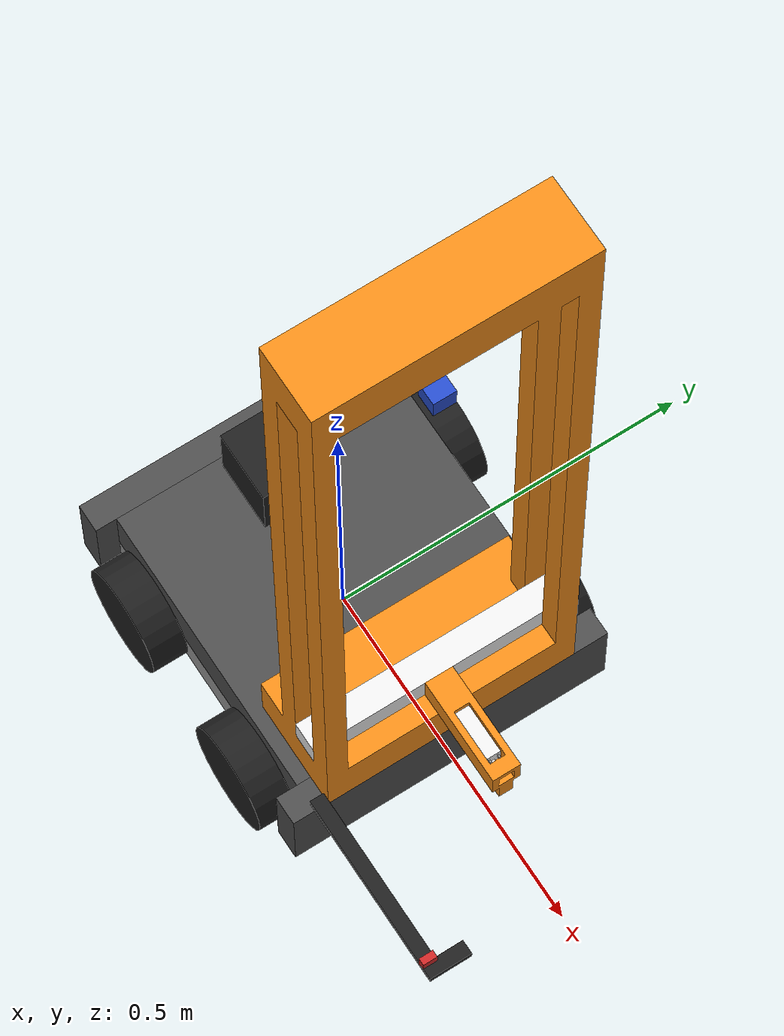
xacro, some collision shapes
<?xml version="1.0"?>

<robot name="jazzy" xmlns:xacro="https://www.ros.org/wiki/xacro" >
    <!--mobile base-->
    <xacro:include filename="$(find ids_description)/urdf/wheeler_2.urdf.xacro" />
      <xacro:property name="friction_k" value="0.98"/>
      <xacro:property name="friction_s" value="0.98"/>
    <xacro:fourwheeler_base_macro/>

    <!--frame 3DOF-->
    <xacro:include filename="$(find ids_description)/urdf/frame.urdf.xacro" />
    <xacro:frame_macro parent="link_fbumper" name="mrobot">
      <origin xyz="-0.11 0 0.14" rpy="0 0 0"/>
    </xacro:frame_macro>

    <!--RGB-D camera, look forward-->
    <xacro:include filename="$(find ids_description)/urdf/realsense.urdf.xacro" />
    <xacro:realsense_macro parent="link_hslider">
      <xacro:property name="location_x" value="0.06"/>
      <xacro:property name="location_y" value="0.0"/>
      <xacro:property name="location_z" value="0.0725"/>
      <xacro:property name="camera_width" value="640" />
      <xacro:property name="camera_height" value="480" />
      <xacro:property name="camera_name" value="camera" />
    </xacro:realsense_macro>

    <!--camera, look upward-->
    <xacro:include filename="$(find ids_description)/urdf/camera.urdf.xacro"/>
    <xacro:camera_macro parent="link_tip">
      <xacro:property name="location_x" value="0.02" />
      <xacro:property name="location_y" value="0.0" />
      <xacro:property name="location_z" value="0.015" />
      <xacro:property name="location_r" value="0" />
      <xacro:property name="location_p" value="-1.57" />
      <xacro:property name="location_y" value="0" />
      <xacro:property name="camera_width" value="600" />
      <xacro:property name="camera_height" value="600" />
      <xacro:property name="camera_name" value="arducam"/>
    </xacro:camera_macro>

    <!-- laser -->
    <xacro:include filename="$(find ids_description)/urdf/laser.urdf.xacro"/>
    <xacro:laser_macro parent="link_fbumper">
      <xacro:property name="location_x" value="0.05" />
      <xacro:property name="location_y" value="0" />
      <xacro:property name="location_z" value="0" />
    </xacro:laser_macro>

</robot>

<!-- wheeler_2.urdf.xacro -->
<robot xmlns:xacro="https://www.ros.org/wiki/xacro" >
    <xacro:property name="friction_k" value="0.98"/>
    <xacro:property name="friction_s" value="0.98"/>
    <xacro:property name="PI" value="3.1415926535897931"/>
    <xacro:property name="chassis_x" value="0.42" />
    <xacro:property name="chassis_y" value="0.4" />
    <xacro:property name="chassis_z" value="0.05" />
    <xacro:property name="chassis_m" value="40" />

    <xacro:property name="wheel_r" value="0.075"/>
    <xacro:property name="wheel_l" value="0.05"/>
    <xacro:property name="wheel_m" value="0.5"/>

    <xacro:property name="wheelbase" value="0.25" /> <!--base on the wheel diameter and chassis_x-->
    <xacro:property name="track" value="0.45" /> <!--base on the wheel width and chassis_y-->
    <xacro:property name="base_x" value="0.42" />
    <xacro:property name="base_y" value="0.4" />
    <xacro:property name="base_z" value="0.075" />
    <xacro:property name="base_m" value="20" />

    <xacro:property name="bumper_x" value="0.04" />
    <xacro:property name="bumper_y" value="0.46" />
    <xacro:property name="bumper_z" value="0.125" />
    <xacro:property name="bumper_m" value="1" />
    <xacro:property name="battery_m" value="10" />

    <!-- main triwheeler link -->
    <xacro:macro name="fourwheeler_base_macro">
      <link name="link_chassis">
        <visual>
          <origin xyz="0 0 0" rpy="0 0 0" />
          <geometry>
            <box size="${chassis_x} ${chassis_y} ${chassis_z}"/>
          </geometry>
        </visual>
        <collision>
          <origin xyz="0 0 0" rpy="0 0 0" />
          <geometry>
            <box size="${chassis_x} ${chassis_y} ${chassis_z}"/>
          </geometry>
        </collision>
        <inertial>
          <mass value="${chassis_m}"/>
          <origin rpy="0 0 0" xyz="0 0 0"/>
          <inertia ixx="${(1/12)*chassis_m*(chassis_y*chassis_y+chassis_z*chassis_z)}" ixy="0" ixz="0" iyy="${(1/12)*chassis_m*(chassis_z*chassis_z+chassis_x*chassis_x)}" iyz="0" izz="${(1/12)*chassis_m*(chassis_x*chassis_x+chassis_y*chassis_y)}"/>
        </inertial>
      </link>

      <!--left rear wheel-->
      <joint name="joint_chassis_lrwheel" type="continuous">
        <origin xyz="-${wheelbase/2} ${track/2} 0" rpy="0 0 0" />
        <parent link="link_chassis"/>
        <child link="link_lrwheel"/>
        <axis xyz="0 1 0" rpy="0 0 0" />
      </joint>
      <link name="link_lrwheel">
        <visual>
          <origin rpy="${PI/2} 0 0" xyz="0 0 0"/>
          <geometry>
            <cylinder length="${wheel_l}" radius="${wheel_r}"/>
          </geometry>
        </visual>
        <collision>
          <origin rpy="${PI/2} 0 0" xyz="0 0 0" />
          <geometry>
            <cylinder length="${wheel_l}" radius="${wheel_r}"/>
          </geometry>
        </collision>
        <inertial>
          <mass value="${wheel_m}"/>
          <origin rpy="${PI/2} 0 0" xyz="0 0 0"/>
          <inertia ixx="${(1/12)*wheel_m*(3*wheel_r*wheel_r+wheel_l*wheel_l)}" ixy="0" ixz="0" iyy="${(1/12)*wheel_m*(3*wheel_r*wheel_r+wheel_l*wheel_l)}" iyz="0" izz="${(1/2)*wheel_m*wheel_r*wheel_r}"/>
        </inertial>
      </link>

      <!--right rear wheel-->
      <joint name="joint_chassis_rrwheel" type="continuous">
        <origin xyz="-${wheelbase/2} -${track/2} 0" rpy="0 0 0" />
        <parent link="link_chassis"/>
        <child link="link_rrwheel"/>
        <axis xyz="0 1 0" rpy="0 0 0" />
      </joint>
      <link name="link_rrwheel">
        <visual>
          <origin rpy="${PI/2} 0 0" xyz="0 0 0"/>
          <geometry>
            <cylinder length="${wheel_l}" radius="${wheel_r}"/>
          </geometry>
        </visual>
        <collision>
          <origin rpy="${PI/2} 0 0" xyz="0 0 0" />
          <geometry>
            <cylinder length="${wheel_l}" radius="${wheel_r}"/>
          </geometry>
        </collision>
        <inertial>
          <mass value="${wheel_m}"/>
          <origin rpy="${PI/2} 0 0" xyz="0 0 0"/>
          <inertia ixx="${(1/12)*wheel_m*(3*wheel_r*wheel_r+wheel_l*wheel_l)}" ixy="0" ixz="0" iyy="${(1/12)*wheel_m*(3*wheel_r*wheel_r+wheel_l*wheel_l)}" iyz="0" izz="${(1/2)*wheel_m*wheel_r*wheel_r}"/>
        </inertial>
      </link>

      <!--left front wheel-->
      <joint name="joint_chassis_lfwheel" type="continuous">
        <origin xyz="${wheelbase/2} ${track/2} 0" rpy="0 0 0" />
        <parent link="link_chassis"/>
        <child link="link_lfwheel"/>
        <axis xyz="0 1 0" rpy="0 0 0" />
      </joint>
      <link name="link_lfwheel">
        <visual>
          <origin rpy="${PI/2} 0 0" xyz="0 0 0"/>
          <geometry>
            <cylinder length="${wheel_l}" radius="${wheel_r}"/>
          </geometry>
        </visual>
        <collision>
          <origin rpy="${PI/2} 0 0" xyz="0 0 0" />
          <geometry>
            <cylinder length="${wheel_l}" radius="${wheel_r}"/>
          </geometry>
        </collision>
        <inertial>
          <mass value="${wheel_m}"/>
          <origin rpy="${PI/2} 0 0" xyz="0 0 0"/>
          <inertia ixx="${(1/12)*wheel_m*(3*wheel_r*wheel_r+wheel_l*wheel_l)}" ixy="0" ixz="0" iyy="${(1/12)*wheel_m*(3*wheel_r*wheel_r+wheel_l*wheel_l)}" iyz="0" izz="${(1/2)*wheel_m*wheel_r*wheel_r}"/>
        </inertial>
      </link>

      <!--right front wheel-->
      <joint name="joint_chassis_rfwheel" type="continuous">
        <origin xyz="${wheelbase/2} -${track/2} 0" rpy="0 0 0" />
        <parent link="link_chassis"/>
        <child link="link_rfwheel"/>
        <axis xyz="0 1 0" rpy="0 0 0" />
      </joint>
      <link name="link_rfwheel">
        <visual>
          <origin rpy="${PI/2} 0 0" xyz="0 0 0"/>
          <geometry>
            <cylinder length="${wheel_l}" radius="${wheel_r}"/>
          </geometry>
        </visual>
        <collision>
          <origin rpy="${PI/2} 0 0" xyz="0 0 0" />
          <geometry>
            <cylinder length="${wheel_l}" radius="${wheel_r}"/>
          </geometry>
        </collision>
        <inertial>
          <mass value="${wheel_m}"/>
          <origin rpy="${PI/2} 0 0" xyz="0 0 0"/>
          <inertia ixx="${(1/12)*wheel_m*(3*wheel_r*wheel_r+wheel_l*wheel_l)}" ixy="0" ixz="0" iyy="${(1/12)*wheel_m*(3*wheel_r*wheel_r+wheel_l*wheel_l)}" iyz="0" izz="${(1/2)*wheel_m*wheel_r*wheel_r}"/>
        </inertial>
      </link>

      <!--upper base-->
      <joint name="joint_chassis_base" type="fixed">
        <origin xyz="0 0 ${chassis_z/2}" rpy="0 0 0"/>
        <parent link="link_chassis"/>
        <child link="link_base"/>
      </joint>

      <link name="link_base">
        <visual>
          <origin xyz="0 0 ${base_z/2}" rpy="0 0 0" />
          <geometry>
            <box size="${base_x} ${base_y} ${base_z}"/>
          </geometry>
        </visual>
        <collision>
          <origin xyz="0 0 ${base_z/2}" rpy="0 0 0" />
          <geometry>
            <box size="${base_x} ${base_y} ${base_z}"/>
          </geometry>
        </collision>
        <inertial>
          <mass value="${base_m}"/>
          <origin rpy="0 0 0" xyz="0 0 0"/>
          <inertia ixx="${(1/12)*base_m*(base_y*base_y+base_z*base_z)}" ixy="0" ixz="0" iyy="${(1/12)*base_m*(base_z*base_z+base_x*base_x)}" iyz="0" izz="${(1/12)*base_m*(base_x*base_x+base_y*base_y)}"/>
        </inertial>
      </link>

      <!--bumper-->
      <joint name="joint_chassis_fbumper" type="fixed">
        <origin xyz="${chassis_x/2} 0 ${(chassis_z+base_z)/2-chassis_z/2}" rpy="0 0 0"/>
        <parent link="link_chassis"/>
        <child link="link_fbumper"/>
      </joint>

      <link name="link_fbumper">
        <visual>
          <origin xyz="${bumper_x/2} 0 0" rpy="0 0 0" />
          <geometry>
            <box size="${bumper_x} ${bumper_y} ${bumper_z}"/>
          </geometry>
        </visual>
        <collision>
          <origin xyz="${bumper_x/2} 0 0" rpy="0 0 0" />
          <geometry>
            <box size="${bumper_x} ${bumper_y} ${bumper_z}"/>
          </geometry>
        </collision>
        <inertial>
          <mass value="${bumper_m}"/>
          <origin rpy="0 0 0" xyz="0 0 0"/>
          <inertia ixx="${(1/12)*bumper_m*(bumper_y*bumper_y+bumper_z*bumper_z)}" ixy="0" ixz="0" iyy="${(1/12)*bumper_m*(bumper_z*bumper_z+bumper_x*bumper_x)}" iyz="0" izz="${(1/12)*bumper_m*(bumper_x*bumper_x+bumper_y*bumper_y)}"/>
        </inertial>
      </link>

      <joint name="joint_chassis_rbumper" type="fixed">
        <origin xyz="-${chassis_x/2} 0 ${(chassis_z+base_z)/2-chassis_z/2}" rpy="0 0 0"/>
        <parent link="link_chassis"/>
        <child link="link_rbumper"/>
      </joint>

      <link name="link_rbumper">
        <visual>
          <origin xyz="-${bumper_x/2} 0 0" rpy="0 0 0" />
          <geometry>
            <box size="${bumper_x} ${bumper_y} ${bumper_z}"/>
          </geometry>
        </visual>
        <collision>
          <origin xyz="-${bumper_x/2} 0 0" rpy="0 0 0" />
          <geometry>
            <box size="${bumper_x} ${bumper_y} ${bumper_z}"/>
          </geometry>
        </collision>
        <inertial>
          <mass value="${bumper_m}"/>
          <origin rpy="0 0 0" xyz="0 0 0"/>
          <inertia ixx="${(1/12)*bumper_m*(bumper_y*bumper_y+bumper_z*bumper_z)}" ixy="0" ixz="0" iyy="${(1/12)*bumper_m*(bumper_z*bumper_z+bumper_x*bumper_x)}" iyz="0" izz="${(1/12)*bumper_m*(bumper_x*bumper_x+bumper_y*bumper_y)}"/>
        </inertial>
      </link>

      <!--baterry-->
      <joint name="joint_base_battery" type="fixed">
        <origin xyz="0 0 ${base_z/2}" rpy="0 0 0"/>
        <parent link="link_base"/>
        <child link="link_battery"/>
      </joint>

      <link name="link_battery">
        <visual>
          <origin xyz="-0.15 0 0.08" rpy="0 0 0" />
          <geometry>
            <box size="0.1 0.1 0.1"/>
          </geometry>
        </visual>
        <collision>
          <origin xyz="-0.15 0 0.08" rpy="0 0 0" />
          <geometry>
            <box size="0.1 0.1 0.1"/>
          </geometry>
        </collision>
        <inertial>
          <mass value="${battery_m}"/>
          <origin rpy="0 0 0" xyz="0 0 0"/>
          <inertia ixx="${(1/12)*battery_m*0.02}" ixy="0" ixz="0" iyy="${(1/12)*battery_m*0.02}" iyz="0" izz="${(1/12)*battery_m*0.02}"/>
        </inertial>
      </link>

      <!--Gazebo-->
      <!-- skid steering controller -->
      <gazebo>
        <plugin name="skid_steer_drive_controller" filename="libgazebo_ros_skid_steer_drive.so">
          <updateRate>100.0</updateRate>
          <robotNamespace>/</robotNamespace>
          <leftFrontJoint>joint_chassis_lfwheel</leftFrontJoint>
          <rightFrontJoint>joint_chassis_rfwheel</rightFrontJoint>
          <leftRearJoint>joint_chassis_lrwheel</leftRearJoint>
          <rightRearJoint>joint_chassis_rrwheel</rightRearJoint>
          <wheelSeparation>${wheelbase}</wheelSeparation>
          <wheelDiameter>2*${wheel_r}</wheelDiameter>
          <torque>200</torque>
          <topicName>cmd_vel</topicName>
          <commandTopic>cmd_vel</commandTopic>
          <robotBaseFrame>link_chassis</robotBaseFrame>
          <odometryFrame>odom</odometryFrame>
          <publish_odom>true</publish_odom>
          <publish_odom_tf>false</publish_odom_tf>
          <odometryTopic>odom</odometryTopic>
          <broadcastTF>true</broadcastTF>
          <covariance_x>0.0001</covariance_x>
          <covariance_y>0.0000</covariance_y>
          <covariance_yaw>0.01</covariance_yaw>
        </plugin>
      </gazebo>

      <gazebo reference="link_chassis">
        <material>Gazebo/Grey</material>
      </gazebo>

      <gazebo reference="link_base">
        <material>Gazebo/DarkGrey</material>
      </gazebo>

      <gazebo reference="link_fbumper">
        <material>Gazebo/DarkGrey</material>
      </gazebo>

      <gazebo reference="link_rbumper">
        <material>Gazebo/DarkGrey</material>
      </gazebo>

      <gazebo reference="link_lrwheel">
        <mu1>${friction_k}</mu1>
        <mu2>${friction_s}</mu2>
        <material>Gazebo/Black</material>
      </gazebo>

      <gazebo reference="link_rrwheel">
        <mu1>${friction_k}</mu1>
        <mu2>${friction_s}</mu2>
        <material>Gazebo/Black</material>
      </gazebo>

      <gazebo reference="link_lfwheel">
        <mu1>${friction_k}</mu1>
        <mu2>${friction_s}</mu2>
        <material>Gazebo/Black</material>
      </gazebo>

      <gazebo reference="link_rfwheel">
        <mu1>${friction_k}</mu1>
        <mu2>${friction_s}</mu2>
        <material>Gazebo/Black</material>
      </gazebo>

    </xacro:macro>
</robot>

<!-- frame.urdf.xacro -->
<robot xmlns:xacro="https://www.ros.org/wiki/xacro" >
    <xacro:property name="PI" value="3.1415926535897931"/>
    <xacro:property name="frame_m" value="20"/>
    <xacro:property name="vslider_m" value="2"/>
    <xacro:property name="hslider_m" value="0.8"/>
    <xacro:property name="plug_m" value="0.2"/>
    <xacro:property name="hook_m" value="0.5"/>
    <xacro:property name="tip_m" value="0.2"/>

    <xacro:macro name="frame_macro" params="parent *origin">
      <joint name="joint_jazzy_frame" type="fixed">
        <xacro:insert_block name="origin"/>
        <parent link="${parent}"/>
        <child link="link_frame"/>
      </joint>
      <link name="link_frame">
        <visual>
          <origin rpy="0 0 0" xyz="0 0 0"/>
          <geometry>
            <mesh filename="package://ids_description/meshes/jazzy/frame.obj" scale="0.01 0.01 0.01"/>
          </geometry>
        </visual>
        <collision>
          <origin rpy=" 0 0 0" xyz="0 0 0"/>
          <geometry>
            <mesh filename="package://ids_description/meshes/jazzy/frame.obj" scale="0.01 0.01 0.01"/>
          </geometry>
        </collision>
        <inertial>
          <mass value="${frame_m}"/>
          <origin rpy="0 0 0" xyz="0 0 0"/>
          <inertia ixx="${frame_m*2.523e-3}" ixy="0" ixz="-${frame_m*5.1e-5}" iyy="${frame_m*2.346e-3}" iyz="0" izz="${frame_m*1.93e-4}"/>
        </inertial>
      </link>
      <!--vertivcal slider-->
      <joint name="joint_frame_vslider" type="prismatic">
        <origin xyz="0.1 0 0.02" rpy="0 0 0"/>
        <parent link="link_frame"/>
        <child link="link_vslider"/>
        <axis xyz="0 0 1"/>
        <limit upper="0.96" lower="0" effort="100.0" velocity="0.1"/>
        <dynamics damping="0" friction="5.0"/>
      </joint>
      <link name="link_vslider">
        <visual>
          <origin rpy="0 0 0" xyz="0 0 0"/>
          <geometry>
            <box size="0.04 0.36 0.04"/>
          </geometry>
        </visual>
        <collision>
          <origin rpy=" 0 0 0" xyz="0 0 0"/>
          <geometry>
            <box size="0.04 0.36 0.04"/>
          </geometry>
        </collision>
        <inertial>
          <mass value="${vslider_m}"/>
          <origin rpy="0 0 0" xyz="0 0 0"/>
          <inertia ixx="${(1/12)*vslider_m*(0.36*0.36+0.04*0.04)}" ixy="0" ixz="0" iyy="${(1/12)*vslider_m*(0.04*0.04+0.04*0.04)}" iyz="0" izz="${(1/12)*vslider_m*(0.04*0.04+0.36*0.36)}"/>
        </inertial>
      </link>
      <!--horizontal slider-->
      <joint name="joint_vslider_hslider" type="prismatic">
        <origin xyz="0 0 0" rpy="0 0 0"/>
        <parent link="link_vslider"/>
        <child link="link_hslider"/>
        <axis xyz="0 1 0"/>
        <limit upper="0.13" lower="-0.13" effort="100.0" velocity="0.1"/>
        <dynamics damping="0" friction="5.0"/>
      </joint>
      <link name="link_hslider">
        <visual>
          <origin rpy="1.57 0 0" xyz="0.02 0 0"/>
          <geometry>
            <mesh filename="package://ids_description/meshes/jazzy/hslider.obj" scale="0.01 0.01 0.01"/>
          </geometry>
        </visual>
        <collision>
          <origin rpy="1.57 0 0" xyz="0.02 0 0"/>
          <geometry>
            <mesh filename="package://ids_description/meshes/jazzy/hslider.obj" scale="0.01 0.01 0.01"/>
          </geometry>
        </collision>
        <inertial>
          <mass value="${hslider_m}"/>
          <origin rpy="1.57 0 0" xyz="0.095 0 0"/>
          <inertia ixx="${(1/12)*hslider_m*(0.04*0.04+0.04*0.04)}" ixy="0" ixz="0" iyy="${(1/12)*hslider_m*(0.15*0.15+0.04*0.04)}" iyz="0" izz="${(1/12)*hslider_m*(0.04*0.04+0.15*0.15)}"/>
        </inertial>
      </link>
      <!--plug-->
      <joint name="joint_hslider_plug" type="prismatic">
        <origin xyz="0 0 0" rpy="0 0 0"/>
        <parent link="link_hslider"/>
        <child link="link_plug"/>
        <axis xyz="1 0 0"/>
        <limit upper="0.1" lower="0" effort="100.0" velocity="0.1"/>
        <dynamics damping="0" friction="5.0"/>
      </joint>
      <link name="link_plug">
        <visual>
          <origin rpy="1.57 0 1.57" xyz="0.07 -0.011 0.011"/>
          <geometry>
            <mesh filename="package://ids_description/meshes/jazzy/plug.obj" scale="0.01 0.01 0.01"/>
          </geometry>
        </visual>
        <collision>
          <origin rpy="1.57 0 1.57" xyz="0.07 -0.011 0.011"/>
          <geometry>
            <mesh filename="package://ids_description/meshes/jazzy/plug.obj" scale="0.01 0.01 0.01"/>
          </geometry>
          <surface>
            <friction>
              <ode>
                <mu>0.01</mu>
                <mu2>0.01</mu2>
              </ode>
            </friction>
          </surface>
        </collision>
        <inertial>
          <mass value="${plug_m}"/>
          <origin rpy="0 0 0" xyz="0.015 0 0"/>
          <inertia ixx="${(1/12)*plug_m*(0.022*0.022+0.022*0.022)}" ixy="0" ixz="0" iyy="${(1/12)*plug_m*(0.022*0.022+0.07*0.07)}" iyz="0" izz="${(1/12)*plug_m*(0.07*0.07+0.022*0.022)}"/>
        </inertial>
      </link>

      <!--contact bumper-->
      <joint name="joint_contact_bp" type="revolute">
        <origin xyz="0.161 0 -0.00636" rpy="0 0 0"/>
        <parent link="link_plug"/>
        <child link="link_contact_bp"/>
        <axis xyz="1 0 0"/>
        <limit upper="0" lower="0" effort="0.0" velocity="0.0"/>
      </joint>
      <link name="link_contact_bp">
        <visual>
          <origin rpy="0 0 0" xyz="0 0 0"/>
          <geometry>
            <box size="0.001 0.001 0.001"/>
          </geometry>
        </visual>
        <collision name="bump_sensor_collision">
          <origin rpy="0 0 0" xyz="0 0 0"/>
          <geometry>
            <box size="0.001 0.001 0.001"/>
          </geometry>
        </collision>
        <inertial>
          <mass value="0.001"/>
          <origin rpy="0 0 0" xyz="0 0 0"/>
          <inertia ixx="0.000000001" ixy="0" ixz="0" iyy="0.000000001" iyz="0" izz="0.000000001"/>
        </inertial>
      </link>

      <!--hook for door opening-->
      <joint name="joint_frame_hook" type="revolute">
        <origin xyz="0.165 -0.19 -0.07" rpy="0 0 0"/>
        <parent link="link_frame"/>
        <child link="link_hook"/>
        <axis xyz="0 -1 0"/>
        <limit upper="1.57" lower="0" effort="300.0" velocity="0.1"/>
      </joint>
      <link name="link_hook">
        <visual>
          <origin rpy="0 0 0" xyz="0.1 0 0"/>
          <geometry>
            <box size="0.25 0.02 0.01"/>
          </geometry>
        </visual>
        <collision>
          <origin rpy="0 0 0" xyz="0.1 0 0"/>
          <geometry>
            <box size="0.25 0.02 0.01"/>
          </geometry>
          <surface>
            <friction>
              <ode>
                <mu>0.01</mu>
                <mu2>0.01</mu2>
              </ode>
            </friction>
          </surface>
        </collision>
        <inertial>
          <mass value="${hook_m}"/>
          <origin rpy="0 0 0" xyz="0.1 0 0"/>
          <inertia ixx="${(1/3)*hook_m*(0.01*0.01+0.02*0.02)}" ixy="0" ixz="0" iyy="${(1/3)*hook_m*(4*0.2*0.2+0.01*0.01)}" iyz="0" izz="${(1/3)*hook_m*(4*0.2*0.2+0.02*0.02)}"/>
        </inertial>
      </link>

      <joint name="joint_hook_tip" type="fixed">
        <origin xyz="0.225 0 0" rpy="0 0 0"/>
        <parent link="link_hook"/>
        <child link="link_tip"/>
      </joint>
      <link name="link_tip">
        <visual>
          <origin rpy="0 0 0" xyz="0.01 0.02 0"/>
          <geometry>
            <box size="0.02 0.06 0.01"/>
          </geometry>
        </visual>
        <collision>
          <origin rpy="0 0 0" xyz="0.01 0.02 0"/>
          <geometry>
            <box size="0.02 0.06 0.01"/>
          </geometry>
        </collision>
        <inertial>
          <mass value="${tip_m}"/>
          <origin rpy="0 0 0" xyz="0.01 0.02 0"/>
          <inertia ixx="${(1/12)*tip_m*(0.06*0.06+0.01*0.01)}" ixy="0" ixz="0" iyy="${(1/3)*tip_m*(0.02*0.02+0.01*0.01)}" iyz="0" izz="${(1/12)*tip_m*(0.02*0.02+0.06*0.06)}"/>
        </inertial>
      </link>

      <!--transmission controls-->
      <transmission name="vtrans">
        <type>transmission_interface/SimpleTransmission</type>
        <joint name="joint_frame_vslider">
          <hardwareInterface>hardware_interface/EffortJointInterface</hardwareInterface>
        </joint>
        <actuator name="vmotor">
          <hardwareInterface>hardware_interface/EffortJointInterface</hardwareInterface>
          <mechanicalReduction>1</mechanicalReduction>
        </actuator>
      </transmission>
      <transmission name="htrans">
        <type>transmission_interface/SimpleTransmission</type>
        <joint name="joint_vslider_hslider">
          <hardwareInterface>hardware_interface/EffortJointInterface</hardwareInterface>
        </joint>
        <actuator name="hmotor">
          <hardwareInterface>hardware_interface/EffortJointInterface</hardwareInterface>
          <mechanicalReduction>1</mechanicalReduction>
        </actuator>
      </transmission>
      <transmission name="ftrans">
        <type>transmission_interface/SimpleTransmission</type>
        <joint name="joint_hslider_plug">
          <hardwareInterface>hardware_interface/EffortJointInterface</hardwareInterface>
        </joint>
        <actuator name="fmotor">
          <hardwareInterface>hardware_interface/EffortJointInterface</hardwareInterface>
          <mechanicalReduction>1</mechanicalReduction>
        </actuator>
      </transmission>
      <transmission name="strans">
        <type>transmission_interface/SimpleTransmission</type>
        <joint name="joint_frame_hook">
          <hardwareInterface>hardware_interface/EffortJointInterface</hardwareInterface>
        </joint>
        <actuator name="smotor">
          <hardwareInterface>hardware_interface/EffortJointInterface</hardwareInterface>
          <mechanicalReduction>1</mechanicalReduction>
        </actuator>
      </transmission>

      <gazebo>
        <plugin name="gazebo_ros_control" filename="libgazebo_ros_control.so">
          <robotSimType>gazebo_ros_control/DefaultRobotHWSim</robotSimType>
          <legacyModeNS>true</legacyModeNS>
          <robotNamespace>$(arg ns)</robotNamespace>
        </plugin>
      </gazebo>

      <!--materials-->
      <gazebo reference="link_frame">
        <material>Gazebo/Orange</material>
      </gazebo>
      <gazebo reference="link_vslider">
        <material>Gazebo/White</material>
      </gazebo>
      <gazebo reference="link_hslider">
        <material>Gazebo/Orange</material>
      </gazebo>
      <gazebo reference="link_plug">
        <material>Gazebo/White</material>
      </gazebo>
      <gazebo reference="link_battery">
        <material>Gazebo/Black</material>
      </gazebo>
      <gazebo reference="link_hook">
        <material>Gazebo/Black</material>
      </gazebo>
      <gazebo reference="link_tip">
        <material>Gazebo/Black</material>
      </gazebo>
      <gazebo reference="link_contact_bp">
        <material>Gazebo/Blue</material>
      </gazebo>

      <!--sensors-->
      <gazebo reference="joint_frame_hook">
        <provideFeedback>true</provideFeedback>
      </gazebo>
      <gazebo reference="joint_vslider_hslider">
        <provideFeedback>true</provideFeedback>
      </gazebo>

      <gazebo>
        <plugin name="sidebar_force_sensor" filename="libgazebo_ros_ft_sensor.so">
          <updateRate>100.0</updateRate>
          <topicName>$(arg ns)/ft_sidebar</topicName>
          <jointName>joint_frame_hook</jointName>
          <noise>
            <type>guassian</type>
            <mean>0.0</mean>
            <stddev>0.003</stddev>
          </noise>
        </plugin>
      </gazebo>

      <gazebo>
        <plugin name="endeffector_force_sensor" filename="libgazebo_ros_ft_sensor.so">
          <updateRate>100.0</updateRate>
          <topicName>$(arg ns)/ft_endeffector</topicName>
          <jointName>joint_vslider_hslider</jointName>
          <noise>
            <type>guassian</type>
            <mean>0.0</mean>
            <stddev>0.003</stddev>
          </noise>
        </plugin>
      </gazebo>
      <gazebo reference="link_contact_bp">
        <sensor name="main_bumper" type="contact">
          <contact>
            <collision>link_contact_bp_fixed_joint_lump__bump_sensor_collision_collision</collision>
          </contact>
          <plugin name="gazebo_ros_bumper_controller" filename="libgazebo_ros_bumper.so">
            <bumperTopicName>$(arg ns)/bumper_plug</bumperTopicName>
            <frameName>$(arg tf_prefix)/link_bp</frameName>
            <alwaysOn>true</alwaysOn>
            <updateRate>100.0</updateRate>
          </plugin>
        </sensor>
      </gazebo>

    </xacro:macro>
</robot>

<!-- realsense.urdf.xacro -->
<robot xmlns:xacro="https://www.ros.org/wiki/xacro" >
    <xacro:property name="M_PI" value="3.1415926535897931"/>
    <xacro:property name="location_x" value="0" />
    <xacro:property name="location_y" value="0" />
    <xacro:property name="location_z" value="1.0" />

    <xacro:property name="realsense_d435_width" value="0.09"/>
    <xacro:property name="realsense_d435_height" value="0.025"/>
    <xacro:property name="realsense_d435_depth" value="0.025"/>
    <!-- Intel_RealSense_D400_Family_Datasheet_Jan2019.pdf, page 64 -->
    <xacro:property name="realsense_d435_front_to_depth" value="0.0042" />
    <!-- Measured from CAD file -->
    <xacro:property name="realsense_d435_mount_hole_to_front" value="0.0149" />
    <xacro:property name="realsense_d435_case_offset_x" value="${realsense_d435_front_to_depth - realsense_d435_depth/2.0}"/>
    <!-- mounting hole to depth frame, Intel_RealSense_D400_Family_Datasheet_Jan2019.pdf, page 66 -->
    <xacro:property name="realsense_d435_case_offset_y" value="-0.0175"/>
    <xacro:property name="realsense_d435_case_offset_z" value="0.0"/>
    <xacro:property name="camera_width" value="640" />
    <xacro:property name="camera_height" value="480" />
    <xacro:property name="camera_name" value="rs435" />

    <xacro:macro name="realsense_macro" params="parent">
      <!--camera-->
      <joint name="joint_rs435" type="fixed">
        <origin xyz="${location_x+realsense_d435_depth/2.0} ${location_y} ${location_z}" rpy="0 0 0"/>
        <parent link="${parent}"/>
        <child link="link_rs435"/>
      </joint>
      <link name="link_rs435">
        <inertial>
          <mass value="0.072" />
          <origin xyz="0 0 0" rpy="0 0 0" />
          <inertia ixx="5.8083e-4" ixy="0" ixz="0" iyy="3.0833e-5" iyz="0" izz="5.9083e-4" />
        </inertial>
        <visual>
          <origin xyz="${realsense_d435_front_to_depth} ${realsense_d435_case_offset_y} 0.0" rpy="${M_PI/2} 0 ${M_PI/2}" />
          <geometry>
            <mesh filename="package://ids_description/meshes/camera/D435.dae" scale="0.001 0.001 0.001" />
          </geometry>
        </visual>
        <collision>
          <origin xyz="${realsense_d435_case_offset_x} ${realsense_d435_case_offset_y} ${realsense_d435_case_offset_z}" rpy="0 0 0" />
          <geometry>
            <box size="${realsense_d435_depth} ${realsense_d435_width} ${realsense_d435_height}" />
          </geometry>
        </collision>
      </link>

      <!--gazebo plugin-->
      <gazebo reference="link_rs435">
        <material>Gazebo/Grey</material>
        <sensor type="depth" name="rs435">
          <update_rate>30</update_rate>
          <camera>
            <horizontal_fov>${69.4*M_PI/180.0}</horizontal_fov>
            <vertical_fov>${42.5*M_PI/180.0}</vertical_fov>
            <diagonal_fov>${77.0*M_PI/180.0}</diagonal_fov>
            <image>
              <format>B8G8R8</format>
              <width>${camera_width}</width>
              <height>${camera_height}</height>
            </image>
            <clip>
              <near>0.105</near>
              <far>9.0</far>
            </clip>
          </camera>
          <plugin name="rs435_camera_plugin" filename="libgazebo_ros_openni_kinect.so">
            <cameraName>${camera_name}</cameraName>
            <imageTopicName>color/image_raw</imageTopicName>
            <cameraInfoTopicName>color/camera_info</cameraInfoTopicName>
            <depthImageTopicName>depth/image_rect_raw</depthImageTopicName>
            <depthImageCameraInfoTopicName>depth/camera_info</depthImageCameraInfoTopicName>
            <pointCloudTopicName>depth/points</pointCloudTopicName>
            <frameName>rs435_frame</frameName>
          </plugin>
        </sensor>
      </gazebo>

    </xacro:macro>
</robot>

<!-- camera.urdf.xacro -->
<robot xmlns:xacro="https://www.ros.org/wiki/xacro" >
    <xacro:property name="M_PI" value="3.1415926535897931"/>
    <xacro:property name="location_x" value="0" />
    <xacro:property name="location_y" value="0" />
    <xacro:property name="location_z" value="0" />
    <xacro:property name="location_r" value="0" />
    <xacro:property name="location_p" value="0" />
    <xacro:property name="location_y" value="0" />
    <xacro:property name="camera_width" value="500" />
    <xacro:property name="camera_height" value="500" />
    <xacro:property name="camera_link" value="0.02" />
    <xacro:property name="camera_name" value="front_cam" />

    <xacro:macro name="camera_macro" params="parent">
    <!--movable camera-->
    <joint name="camera_joint_${camera_name}" type="fixed">
      <origin xyz="${location_x} ${location_y} ${location_z}" rpy="${location_r} ${location_p} ${location_y}"/>
      <parent link="${parent}"/>
      <child link="camera_link_${camera_name}"/>
    </joint>
    <link name="camera_link_${camera_name}">
      <collision>
        <origin xyz="0 0 ${camera_link/2}" rpy="0 0 0"/>
        <geometry>
          <box size="${camera_link} ${camera_link} ${camera_link}"/>
        </geometry>
      </collision>
      <visual>
        <origin xyz="0 0 ${camera_link/2}" rpy="0 0 0"/>
        <geometry>
          <box size="${camera_link/2} ${camera_link} ${camera_link}"/>
        </geometry>
      </visual>
      <inertial>
        <mass value="1e-5" />
        <origin xyz="0 0 0" rpy="0 0 0"/>
        <inertia ixx="1e-6" ixy="0" ixz="0" iyy="1e-6" iyz="0" izz="1e-6" />
      </inertial>
    </link>

    <gazebo reference="camera_link_${camera_name}">
      <material>Gazebo/Red</material>
      <sensor type="camera" name="${camera_name}">
        <update_rate>30.0</update_rate>
        <camera name="head">
          <horizontal_fov>0.61</horizontal_fov>
          <image>
            <width>${camera_width}</width>
            <height>${camera_height}</height>
            <format>R8G8B8</format>
          </image>
          <clip>
            <near>0.001</near>
            <far>300</far>
          </clip>
          <noise>
            <type>gaussian</type>
            <mean>0.0</mean>
            <stddev>0.001</stddev>
          </noise>
        </camera>
        <plugin name="camera_controller" filename="libgazebo_ros_camera.so">
          <alwaysOn>true</alwaysOn>
          <updateRate>30</updateRate>
          <cameraName>/$(arg ns)/${camera_name}</cameraName>
          <imageTopicName>image</imageTopicName>
          <cameraInfoTopicName>cam_info</cameraInfoTopicName>
          <frameName>$(arg tf_prefix)/${camera_name}</frameName>
          <hackBaseline>0.01</hackBaseline>
          <distortionK1>0.0</distortionK1>
          <distortionK2>0.0</distortionK2>
          <distortionK3>0.0</distortionK3>
          <distortionT1>0.0</distortionT1>
          <distortionT2>0.0</distortionT2>
        </plugin>
      </sensor>
    </gazebo>

    </xacro:macro>
</robot>

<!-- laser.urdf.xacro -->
<robot xmlns:xacro="https://www.ros.org/wiki/xacro" >
    <xacro:property name="M_PI" value="3.1415926535897931"/>
    <xacro:property name="location_x" value="0" />
    <xacro:property name="location_y" value="0" />
    <xacro:property name="location_z" value="1.0" />

    <xacro:macro name="laser_macro" params="parent">
      <!--laser support-->
      <joint name="joint_hokuyo" type="fixed">
        <origin xyz="${location_x} ${location_y} ${location_z}" rpy="0 0 0"/>
        <parent link="${parent}"/>
        <child link="link_hokuyo"/>
      </joint>

      <link name="link_hokuyo">
        <collision>
          <origin xyz="0 0 0" rpy="0 0 0"/>
          <geometry>
            <box size="0.03 0.03 0.03"/>
          </geometry>
        </collision>

        <visual>
          <origin xyz="0 0 0" rpy="0 0 0"/>
          <geometry>
            <box size="0.03 0.03 0.03"/>
          </geometry>
        </visual>

        <inertial>
          <mass value="1e-5" />
          <origin xyz="0 0 0" rpy="0 0 0"/>
          <inertia ixx="1e-6" ixy="0" ixz="0" iyy="1e-6" iyz="0" izz="1e-6" />
        </inertial>
      </link>

      <!-- hokuyo -->
      <gazebo reference="link_hokuyo">
        <material>Gazebo/Blue</material>
        <sensor type="gpu_ray" name="head_hokuyo_sensor">
          <pose>0 0 0 0 0 0</pose>
          <visualize>false</visualize>
          <update_rate>50</update_rate>
          <ray>
            <scan>
              <horizontal>
                <samples>720</samples>
                <resolution>1</resolution>
                <min_angle>-1.570796</min_angle>
                <max_angle>1.570796</max_angle>
              </horizontal>
            </scan>
            <range>
              <min>0.05</min>
              <max>30.0</max>
              <resolution>0.001</resolution>
            </range>
            <noise>
              <type>gaussian</type>
              <mean>0.0</mean>
              <stddev>0.01</stddev>
            </noise>
          </ray>
          <plugin name="gazebo_ros_head_hokuyo_controller" filename="libgazebo_ros_gpu_laser.so">
            <topicName>$(arg ns)/laser/scan</topicName>
            <frameName>$(arg tf_prefix)/link_hokuyo</frameName>
          </plugin>
        </sensor>
      </gazebo>
    </xacro:macro>
</robot>
